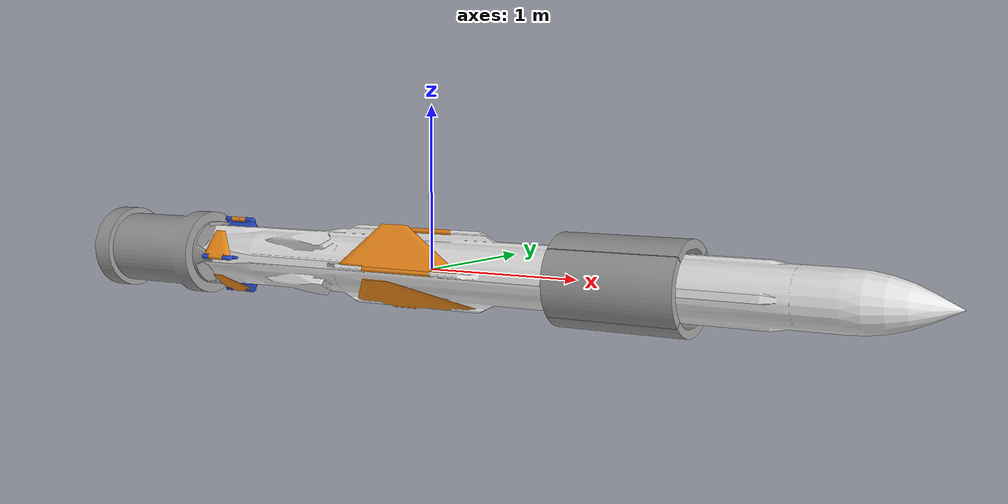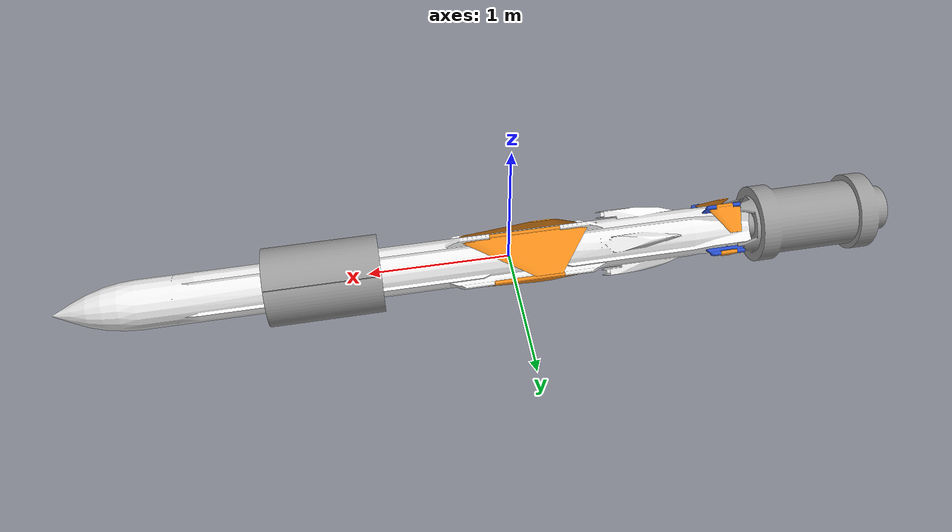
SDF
<sdf version='1.7'>
  <model name='ex_mm40b3'>
    <link name='base_link'>
      <inertial>
        <pose>0.558219 -0 -0 0 -0 0</pose>
        <mass>564.97</mass>
        <inertia>
          <ixx>13.5604</ixx>
          <ixy>0</ixy>
          <ixz>0</ixz>
          <iyy>1088.29</iyy>
          <iyz>0</iyz>
          <izz>1088.29</izz>
        </inertia>
      </inertial>
      <collision name='base_link_collision'>
        <pose>0 0 0 0 -0 0</pose>
        <geometry>
          <mesh>
            <scale>0.001 0.001 0.001</scale>
            <uri>model://ex_mm40b3_description/meshes/base_link.stl</uri>
          </mesh>
        </geometry>
        <surface>
          <contact>
            <ode/>
          </contact>
          <friction>
            <ode>
              <mu>0.2</mu>
              <mu2>0.2</mu2>
            </ode>
          </friction>
        </surface>
      </collision>
      <visual name='base_link_visual'>
        <pose>0 0 0 0 -0 0</pose>
        <geometry>
          <mesh>
            <scale>0.001 0.001 0.001</scale>
            <uri>model://ex_mm40b3_description/meshes/base_link.stl</uri>
          </mesh>
        </geometry>
        <material>
          <script>
            <name>Gazebo/White</name>
            <uri>file://media/materials/scripts/gazebo.material</uri>
          </script>
        </material>
      </visual>
      <self_collide>1</self_collide>
      <gravity>1</gravity>
    </link>
    <joint name='HolderJoint1' type='fixed'>
      <pose relative_to='base_link'>1.51469 0 0.187374 0 -0 0</pose>
      <parent>base_link</parent>
      <child>Holder_1</child>
      <axis>
        <dynamics>
          <spring_reference>0</spring_reference>
          <spring_stiffness>0</spring_stiffness>
        </dynamics>
        <xyz>0 0 1</xyz>
        <limit>
          <lower>-1e+16</lower>
          <upper>1e+16</upper>
        </limit>
      </axis>
      <physics>
        <ode>
          <limit>
            <cfm>0</cfm>
            <erp>0.2</erp>
          </limit>
        </ode>
      </physics>
    </joint>
    <link name='Holder_1'>
      <pose relative_to='HolderJoint1'>0 0 0 0 -0 0</pose>
      <inertial>
        <pose>-0.2 -0 0.036081 0 -0 0</pose>
        <mass>12.0855</mass>
        <inertia>
          <ixx>0.161772</ixx>
          <ixy>0</ixy>
          <ixz>0</ixz>
          <iyy>0.69521</iyy>
          <iyz>0</iyz>
          <izz>0.836017</izz>
        </inertia>
      </inertial>
      <collision name='Holder_1_collision'>
        <pose>-1.51469 0 -0.187374 0 -0 0</pose>
        <geometry>
          <mesh>
            <scale>0.001 0.001 0.001</scale>
            <uri>model://ex_mm40b3_description/meshes/Holder_1.stl</uri>
          </mesh>
        </geometry>
        <surface>
          <contact>
            <ode/>
          </contact>
          <friction>
            <ode>
              <mu>0.2</mu>
              <mu2>0.2</mu2>
            </ode>
          </friction>
        </surface>
      </collision>
      <visual name='Holder_1_visual'>
        <pose>-1.51469 0 -0.187374 0 -0 0</pose>
        <geometry>
          <mesh>
            <scale>0.001 0.001 0.001</scale>
            <uri>model://ex_mm40b3_description/meshes/Holder_1.stl</uri>
          </mesh>
        </geometry>
        <material>
          <script>
            <name>Gazebo/Grey</name>
            <uri>file://media/materials/scripts/gazebo.material</uri>
          </script>
        </material>
      </visual>
      <self_collide>1</self_collide>
    </link>
    <joint name='HolderJoint2' type='fixed'>
      <pose relative_to='base_link'>1.51469 -0.187374 0 0 -0 0</pose>
      <parent>base_link</parent>
      <child>Holder_2</child>
      <axis>
        <dynamics>
          <spring_reference>0</spring_reference>
          <spring_stiffness>0</spring_stiffness>
        </dynamics>
        <xyz>0 0 1</xyz>
        <limit>
          <lower>-1e+16</lower>
          <upper>1e+16</upper>
        </limit>
      </axis>
      <physics>
        <ode>
          <limit>
            <cfm>0</cfm>
            <erp>0.2</erp>
          </limit>
        </ode>
      </physics>
    </joint>
    <link name='Holder_2'>
      <pose relative_to='HolderJoint2'>0 0 0 0 -0 0</pose>
      <inertial>
        <pose>-0.2 -0.036081 -0 0 -0 0</pose>
        <mass>12.0855</mass>
        <inertia>
          <ixx>0.161772</ixx>
          <ixy>0</ixy>
          <ixz>0</ixz>
          <iyy>0.836017</iyy>
          <iyz>0</iyz>
          <izz>0.69521</izz>
        </inertia>
      </inertial>
      <collision name='Holder_2_collision'>
        <pose>-1.51469 0.187374 0 0 -0 0</pose>
        <geometry>
          <mesh>
            <scale>0.001 0.001 0.001</scale>
            <uri>model://ex_mm40b3_description/meshes/Holder_2.stl</uri>
          </mesh>
        </geometry>
        <surface>
          <contact>
            <ode/>
          </contact>
          <friction>
            <ode>
              <mu>0.2</mu>
              <mu2>0.2</mu2>
            </ode>
          </friction>
        </surface>
      </collision>
      <visual name='Holder_2_visual'>
        <pose>-1.51469 0.187374 0 0 -0 0</pose>
        <geometry>
          <mesh>
            <scale>0.001 0.001 0.001</scale>
            <uri>model://ex_mm40b3_description/meshes/Holder_2.stl</uri>
          </mesh>
        </geometry>
        <material>
          <script>
            <name>Gazebo/Grey</name>
            <uri>file://media/materials/scripts/gazebo.material</uri>
          </script>
        </material>
      </visual>
      <self_collide>1</self_collide>
    </link>
    <joint name='HolderJoint3' type='fixed'>
      <pose relative_to='base_link'>1.51469 0 -0.187374 0 -0 0</pose>
      <parent>base_link</parent>
      <child>Holder_3</child>
      <axis>
        <dynamics>
          <spring_reference>0</spring_reference>
          <spring_stiffness>0</spring_stiffness>
        </dynamics>
        <xyz>0 0 1</xyz>
        <limit>
          <lower>-1e+16</lower>
          <upper>1e+16</upper>
        </limit>
      </axis>
      <physics>
        <ode>
          <limit>
            <cfm>0</cfm>
            <erp>0.2</erp>
          </limit>
        </ode>
      </physics>
    </joint>
    <link name='Holder_3'>
      <pose relative_to='HolderJoint3'>0 0 0 0 -0 0</pose>
      <inertial>
        <pose>-0.2 0 -0.036081 0 -0 0</pose>
        <mass>12.0855</mass>
        <inertia>
          <ixx>0.161772</ixx>
          <ixy>0</ixy>
          <ixz>0</ixz>
          <iyy>0.69521</iyy>
          <iyz>0</iyz>
          <izz>0.836017</izz>
        </inertia>
      </inertial>
      <collision name='Holder_3_collision'>
        <pose>-1.51469 0 0.187374 0 -0 0</pose>
        <geometry>
          <mesh>
            <scale>0.001 0.001 0.001</scale>
            <uri>model://ex_mm40b3_description/meshes/Holder_3.stl</uri>
          </mesh>
        </geometry>
        <surface>
          <contact>
            <ode/>
          </contact>
          <friction>
            <ode>
              <mu>0.2</mu>
              <mu2>0.2</mu2>
            </ode>
          </friction>
        </surface>
      </collision>
      <visual name='Holder_3_visual'>
        <pose>-1.51469 0 0.187374 0 -0 0</pose>
        <geometry>
          <mesh>
            <scale>0.001 0.001 0.001</scale>
            <uri>model://ex_mm40b3_description/meshes/Holder_3.stl</uri>
          </mesh>
        </geometry>
        <material>
          <script>
            <name>Gazebo/Grey</name>
            <uri>file://media/materials/scripts/gazebo.material</uri>
          </script>
        </material>
      </visual>
      <self_collide>1</self_collide>
    </link>
    <joint name='HolderJoint4' type='fixed'>
      <pose relative_to='base_link'>1.51469 0.187374 0 0 -0 0</pose>
      <parent>base_link</parent>
      <child>Holder_4</child>
      <axis>
        <dynamics>
          <spring_reference>0</spring_reference>
          <spring_stiffness>0</spring_stiffness>
        </dynamics>
        <xyz>0 0 1</xyz>
        <limit>
          <lower>-1e+16</lower>
          <upper>1e+16</upper>
        </limit>
      </axis>
      <physics>
        <ode>
          <limit>
            <cfm>0</cfm>
            <erp>0.2</erp>
          </limit>
        </ode>
      </physics>
    </joint>
    <link name='Holder_4'>
      <pose relative_to='HolderJoint4'>0 0 0 0 -0 0</pose>
      <inertial>
        <pose>-0.2 0.036081 0 0 -0 0</pose>
        <mass>12.0855</mass>
        <inertia>
          <ixx>0.161772</ixx>
          <ixy>0</ixy>
          <ixz>0</ixz>
          <iyy>0.836017</iyy>
          <iyz>0</iyz>
          <izz>0.69521</izz>
        </inertia>
      </inertial>
      <collision name='Holder_4_collision'>
        <pose>-1.51469 -0.187374 0 0 -0 0</pose>
        <geometry>
          <mesh>
            <scale>0.001 0.001 0.001</scale>
            <uri>model://ex_mm40b3_description/meshes/Holder_4.stl</uri>
          </mesh>
        </geometry>
        <surface>
          <contact>
            <ode/>
          </contact>
          <friction>
            <ode>
              <mu>0.2</mu>
              <mu2>0.2</mu2>
            </ode>
          </friction>
        </surface>
      </collision>
      <visual name='Holder_4_visual'>
        <pose>-1.51469 -0.187374 0 0 -0 0</pose>
        <geometry>
          <mesh>
            <scale>0.001 0.001 0.001</scale>
            <uri>model://ex_mm40b3_description/meshes/Holder_4.stl</uri>
          </mesh>
        </geometry>
        <material>
          <script>
            <name>Gazebo/Grey</name>
            <uri>file://media/materials/scripts/gazebo.material</uri>
          </script>
        </material>
      </visual>
      <self_collide>1</self_collide>
    </link>
    <joint name='booster_fixing' type='fixed'>
      <pose relative_to='base_link'>-1.74178 0 0 0 -0 0</pose>
      <parent>base_link</parent>
      <child>Booster_1</child>
      <axis>
        <dynamics>
          <spring_reference>0</spring_reference>
          <spring_stiffness>0</spring_stiffness>
        </dynamics>
        <xyz>0 0 1</xyz>
        <limit>
          <lower>-1e+16</lower>
          <upper>1e+16</upper>
        </limit>
      </axis>
      <physics>
        <ode>
          <limit>
            <cfm>0</cfm>
            <erp>0.2</erp>
          </limit>
        </ode>
      </physics>
    </joint>
    <link name='Booster_1'>
      <pose relative_to='booster_fixing'>0 0 0 0 -0 0</pose>
      <inertial>
        <pose>-0.530988 0 0 0 -0 0</pose>
        <mass>138.763</mass>
        <inertia>
          <ixx>6.06454</ixx>
          <ixy>0</ixy>
          <ixz>0</ixz>
          <iyy>17.4505</iyy>
          <iyz>0</iyz>
          <izz>17.4505</izz>
        </inertia>
      </inertial>
      <collision name='Booster_1_collision'>
        <pose>1.74178 0 0 0 -0 0</pose>
        <geometry>
          <mesh>
            <scale>0.001 0.001 0.001</scale>
            <uri>model://ex_mm40b3_description/meshes/Booster_1.stl</uri>
          </mesh>
        </geometry>
        <surface>
          <contact>
            <ode/>
          </contact>
          <friction>
            <ode>
              <mu>0.2</mu>
              <mu2>0.2</mu2>
            </ode>
          </friction>
        </surface>
      </collision>
      <visual name='Booster_1_visual'>
        <pose>1.74178 0 0 0 -0 0</pose>
        <geometry>
          <mesh>
            <scale>0.001 0.001 0.001</scale>
            <uri>model://ex_mm40b3_description/meshes/Booster_1.stl</uri>
          </mesh>
        </geometry>
        <plugin name='SimpleThrustVisual' filename='libForceVisual.so'>
          <topic_name>booster_visual</topic_name>
          <color>Gazebo/Red</color>
        </plugin>
        <material>
          <script>
            <name>Gazebo/Gray</name>
            <uri>file://media/materials/scripts/gazebo.material</uri>
          </script>
        </material>
      </visual>
      <self_collide>1</self_collide>
    </link>
    <joint name='fins_rev1' type='revolute'>
      <pose relative_to='base_link'>-1.56176 0 0.18 0 -0 0</pose>
      <parent>base_link</parent>
      <child>FinHolder_1</child>
      <axis>
        <xyz>0 0 1</xyz>
        <limit>
          <lower>-0.349066</lower>
          <upper>0.349066</upper>
          <effort>100</effort>
          <velocity>100</velocity>
        </limit>
        <dynamics>
          <spring_reference>0</spring_reference>
          <spring_stiffness>0</spring_stiffness>
        </dynamics>
      </axis>
    </joint>
    <link name='FinHolder_1'>
      <pose relative_to='fins_rev1'>0 0 0 0 -0 0</pose>
      <inertial>
        <pose>0.01199 3e-06 0.035204 0 -0 0</pose>
        <mass>0.613642</mass>
        <inertia>
          <ixx>0.000219</ixx>
          <ixy>0</ixy>
          <ixz>3.8e-05</ixz>
          <iyy>0.004162</iyy>
          <iyz>0</iyz>
          <izz>0.003989</izz>
        </inertia>
      </inertial>
      <collision name='FinHolder_1_collision'>
        <pose>1.56176 0 -0.18 0 -0 0</pose>
        <geometry>
          <mesh>
            <scale>0.001 0.001 0.001</scale>
            <uri>model://ex_mm40b3_description/meshes/FinHolder_1.stl</uri>
          </mesh>
        </geometry>
        <surface>
          <contact>
            <ode/>
          </contact>
          <friction>
            <ode>
              <mu>0.2</mu>
              <mu2>0.2</mu2>
            </ode>
          </friction>
        </surface>
      </collision>
      <visual name='FinHolder_1_visual'>
        <pose>1.56176 0 -0.18 0 -0 0</pose>
        <geometry>
          <mesh>
            <scale>0.001 0.001 0.001</scale>
            <uri>model://ex_mm40b3_description/meshes/FinHolder_1.stl</uri>
          </mesh>
        </geometry>
        <material>
          <script>
            <name>Gazebo/Blue</name>
            <uri>file://media/materials/scripts/gazebo.material</uri>
          </script>
        </material>
      </visual>
      <self_collide>1</self_collide>
    </link>
    <joint name='fin_fold1' type='revolute'>
      <pose relative_to='FinHolder_1'>0 0 0.055 0 -0 0</pose>
      <parent>FinHolder_1</parent>
      <child>Fin_1</child>
      <axis>
        <xyz>1 0 0</xyz>
        <limit>
          <lower>0</lower>
          <upper>2.14676</upper>
          <effort>100</effort>
          <velocity>100</velocity>
        </limit>
        <dynamics>
          <spring_reference>0</spring_reference>
          <spring_stiffness>0</spring_stiffness>
        </dynamics>
      </axis>
    </joint>
    <link name='Fin_1'>
      <pose relative_to='fin_fold1'>0 0 0 0 -0 0</pose>
      <inertial>
        <pose>-0.01567 0.051059 -0.033158 0 -0 0</pose>
        <mass>1.19146</mass>
        <inertia>
          <ixx>0.003045</ixx>
          <ixy>0.000707</ixy>
          <ixz>-0.000459</ixz>
          <iyy>0.003419</iyy>
          <iyz>0.00136</iyz>
          <izz>0.004631</izz>
        </inertia>
      </inertial>
      <collision name='Fin_1_collision'>
        <pose>1.56176 0 -0.235 0 -0 0</pose>
        <geometry>
          <mesh>
            <scale>0.001 0.001 0.001</scale>
            <uri>model://ex_mm40b3_description/meshes/Fin_1.stl</uri>
          </mesh>
        </geometry>
        <surface>
          <contact>
            <ode/>
          </contact>
          <friction>
            <ode>
              <mu>0.2</mu>
              <mu2>0.2</mu2>
            </ode>
          </friction>
        </surface>
      </collision>
      <visual name='Fin_1_visual'>
        <pose>1.56176 0 -0.235 0 -0 0</pose>
        <geometry>
          <mesh>
            <scale>0.001 0.001 0.001</scale>
            <uri>model://ex_mm40b3_description/meshes/Fin_1.stl</uri>
          </mesh>
        </geometry>
        <material>
          <script>
            <name>Gazebo/Orange</name>
            <uri>file://media/materials/scripts/gazebo.material</uri>
          </script>
        </material>
      </visual>
      <self_collide>1</self_collide>
    </link>
    <joint name='fins_rev2' type='revolute'>
      <pose relative_to='base_link'>-1.56176 0.18 0 0 -0 0</pose>
      <parent>base_link</parent>
      <child>FinHolder_2</child>
      <axis>
        <xyz>0 1 0</xyz>
        <limit>
          <lower>-0.349066</lower>
          <upper>0.349066</upper>
          <effort>100</effort>
          <velocity>100</velocity>
        </limit>
        <dynamics>
          <spring_reference>0</spring_reference>
          <spring_stiffness>0</spring_stiffness>
        </dynamics>
      </axis>
    </joint>
    <link name='FinHolder_2'>
      <pose relative_to='fins_rev2'>0 0 0 0 -0 0</pose>
      <inertial>
        <pose>0.01199 0.035204 -3e-06 0 -0 0</pose>
        <mass>0.613642</mass>
        <inertia>
          <ixx>0.000219</ixx>
          <ixy>3.8e-05</ixy>
          <ixz>0</ixz>
          <iyy>0.003989</iyy>
          <iyz>0</iyz>
          <izz>0.004162</izz>
        </inertia>
      </inertial>
      <collision name='FinHolder_2_collision'>
        <pose>1.56176 -0.18 0 0 -0 0</pose>
        <geometry>
          <mesh>
            <scale>0.001 0.001 0.001</scale>
            <uri>model://ex_mm40b3_description/meshes/FinHolder_2.stl</uri>
          </mesh>
        </geometry>
        <surface>
          <contact>
            <ode/>
          </contact>
          <friction>
            <ode>
              <mu>0.2</mu>
              <mu2>0.2</mu2>
            </ode>
          </friction>
        </surface>
      </collision>
      <visual name='FinHolder_2_visual'>
        <pose>1.56176 -0.18 0 0 -0 0</pose>
        <geometry>
          <mesh>
            <scale>0.001 0.001 0.001</scale>
            <uri>model://ex_mm40b3_description/meshes/FinHolder_2.stl</uri>
          </mesh>
        </geometry>
        <material>
          <script>
            <name>Gazebo/Blue</name>
            <uri>file://media/materials/scripts/gazebo.material</uri>
          </script>
        </material>
      </visual>
      <self_collide>1</self_collide>
    </link>
    <joint name='fin_fold2' type='revolute'>
      <pose relative_to='FinHolder_2'>0 0.055 -1.7e-05 0 -0 0</pose>
      <parent>FinHolder_2</parent>
      <child>Fin_2</child>
      <axis>
        <xyz>1 0 0</xyz>
        <limit>
          <lower>0</lower>
          <upper>2.14676</upper>
          <effort>100</effort>
          <velocity>100</velocity>
        </limit>
        <dynamics>
          <spring_reference>0</spring_reference>
          <spring_stiffness>0</spring_stiffness>
        </dynamics>
      </axis>
    </joint>
    <link name='Fin_2'>
      <pose relative_to='fin_fold2'>0 0 0 0 -0 0</pose>
      <inertial>
        <pose>-0.01567 -0.033158 -0.051059 0 -0 0</pose>
        <mass>1.19146</mass>
        <inertia>
          <ixx>0.003045</ixx>
          <ixy>-0.000459</ixy>
          <ixz>-0.000707</ixz>
          <iyy>0.004631</iyy>
          <iyz>-0.00136</iyz>
          <izz>0.003419</izz>
        </inertia>
      </inertial>
      <collision name='Fin_2_collision'>
        <pose>1.56176 -0.235 1.7e-05 0 -0 0</pose>
        <geometry>
          <mesh>
            <scale>0.001 0.001 0.001</scale>
            <uri>model://ex_mm40b3_description/meshes/Fin_2.stl</uri>
          </mesh>
        </geometry>
        <surface>
          <contact>
            <ode/>
          </contact>
          <friction>
            <ode>
              <mu>0.2</mu>
              <mu2>0.2</mu2>
            </ode>
          </friction>
        </surface>
      </collision>
      <visual name='Fin_2_visual'>
        <pose>1.56176 -0.235 1.7e-05 0 -0 0</pose>
        <geometry>
          <mesh>
            <scale>0.001 0.001 0.001</scale>
            <uri>model://ex_mm40b3_description/meshes/Fin_2.stl</uri>
          </mesh>
        </geometry>
        <material>
          <script>
            <name>Gazebo/Orange</name>
            <uri>file://media/materials/scripts/gazebo.material</uri>
          </script>
        </material>
      </visual>
      <self_collide>1</self_collide>
    </link>
    <joint name='fins_rev3' type='revolute'>
      <pose relative_to='base_link'>-1.56176 0 -0.18 0 -0 0</pose>
      <parent>base_link</parent>
      <child>FinHolder_3</child>
      <axis>
        <xyz>0 0 -1</xyz>
        <limit>
          <lower>-0.349066</lower>
          <upper>0.349066</upper>
          <effort>100</effort>
          <velocity>100</velocity>
        </limit>
        <dynamics>
          <spring_reference>0</spring_reference>
          <spring_stiffness>0</spring_stiffness>
        </dynamics>
      </axis>
    </joint>
    <link name='FinHolder_3'>
      <pose relative_to='fins_rev3'>0 0 0 0 -0 0</pose>
      <inertial>
        <pose>0.01199 -3e-06 -0.035204 0 -0 0</pose>
        <mass>0.613642</mass>
        <inertia>
          <ixx>0.000219</ixx>
          <ixy>0</ixy>
          <ixz>-3.8e-05</ixz>
          <iyy>0.004162</iyy>
          <iyz>0</iyz>
          <izz>0.003989</izz>
        </inertia>
      </inertial>
      <collision name='FinHolder_3_collision'>
        <pose>1.56176 0 0.18 0 -0 0</pose>
        <geometry>
          <mesh>
            <scale>0.001 0.001 0.001</scale>
            <uri>model://ex_mm40b3_description/meshes/FinHolder_3.stl</uri>
          </mesh>
        </geometry>
        <surface>
          <contact>
            <ode/>
          </contact>
          <friction>
            <ode>
              <mu>0.2</mu>
              <mu2>0.2</mu2>
            </ode>
          </friction>
        </surface>
      </collision>
      <visual name='FinHolder_3_visual'>
        <pose>1.56176 0 0.18 0 -0 0</pose>
        <geometry>
          <mesh>
            <scale>0.001 0.001 0.001</scale>
            <uri>model://ex_mm40b3_description/meshes/FinHolder_3.stl</uri>
          </mesh>
        </geometry>
        <material>
          <script>
            <name>Gazebo/Blue</name>
            <uri>file://media/materials/scripts/gazebo.material</uri>
          </script>
        </material>
      </visual>
      <self_collide>1</self_collide>
    </link>
    <joint name='fin_fold3' type='revolute'>
      <pose relative_to='FinHolder_3'>0 0 -0.055 0 -0 0</pose>
      <parent>FinHolder_3</parent>
      <child>Fin_3</child>
      <axis>
        <xyz>1 0 0</xyz>
        <limit>
          <lower>0</lower>
          <upper>2.14676</upper>
          <effort>100</effort>
          <velocity>100</velocity>
        </limit>
        <dynamics>
          <spring_reference>0</spring_reference>
          <spring_stiffness>0</spring_stiffness>
        </dynamics>
      </axis>
    </joint>
    <link name='Fin_3'>
      <pose relative_to='fin_fold3'>0 0 0 0 -0 0</pose>
      <inertial>
        <pose>-0.01567 -0.051059 0.033158 0 -0 0</pose>
        <mass>1.19146</mass>
        <inertia>
          <ixx>0.003045</ixx>
          <ixy>-0.000707</ixy>
          <ixz>0.000459</ixz>
          <iyy>0.003419</iyy>
          <iyz>0.00136</iyz>
          <izz>0.004631</izz>
        </inertia>
      </inertial>
      <collision name='Fin_3_collision'>
        <pose>1.56176 0 0.235 0 -0 0</pose>
        <geometry>
          <mesh>
            <scale>0.001 0.001 0.001</scale>
            <uri>model://ex_mm40b3_description/meshes/Fin_3.stl</uri>
          </mesh>
        </geometry>
        <surface>
          <contact>
            <ode/>
          </contact>
          <friction>
            <ode>
              <mu>0.2</mu>
              <mu2>0.2</mu2>
            </ode>
          </friction>
        </surface>
      </collision>
      <visual name='Fin_3_visual'>
        <pose>1.56176 0 0.235 0 -0 0</pose>
        <geometry>
          <mesh>
            <scale>0.001 0.001 0.001</scale>
            <uri>model://ex_mm40b3_description/meshes/Fin_3.stl</uri>
          </mesh>
        </geometry>
        <material>
          <script>
            <name>Gazebo/Orange</name>
            <uri>file://media/materials/scripts/gazebo.material</uri>
          </script>
        </material>
      </visual>
      <self_collide>1</self_collide>
    </link>
    <joint name='fins_rev4' type='revolute'>
      <pose relative_to='base_link'>-1.56176 -0.18 0 0 -0 0</pose>
      <parent>base_link</parent>
      <child>FinHolder_4</child>
      <axis>
        <xyz>0 -1 0</xyz>
        <limit>
          <lower>-0.349066</lower>
          <upper>0.349066</upper>
          <effort>100</effort>
          <velocity>100</velocity>
        </limit>
        <dynamics>
          <spring_reference>0</spring_reference>
          <spring_stiffness>0</spring_stiffness>
        </dynamics>
      </axis>
    </joint>
    <link name='FinHolder_4'>
      <pose relative_to='fins_rev4'>0 0 0 0 -0 0</pose>
      <inertial>
        <pose>0.01199 -0.035204 3e-06 0 -0 0</pose>
        <mass>0.613642</mass>
        <inertia>
          <ixx>0.000219</ixx>
          <ixy>-3.8e-05</ixy>
          <ixz>0</ixz>
          <iyy>0.003989</iyy>
          <iyz>0</iyz>
          <izz>0.004162</izz>
        </inertia>
      </inertial>
      <collision name='FinHolder_4_collision'>
        <pose>1.56176 0.18 0 0 -0 0</pose>
        <geometry>
          <mesh>
            <scale>0.001 0.001 0.001</scale>
            <uri>model://ex_mm40b3_description/meshes/FinHolder_4.stl</uri>
          </mesh>
        </geometry>
        <surface>
          <contact>
            <ode/>
          </contact>
          <friction>
            <ode>
              <mu>0.2</mu>
              <mu2>0.2</mu2>
            </ode>
          </friction>
        </surface>
      </collision>
      <visual name='FinHolder_4_visual'>
        <pose>1.56176 0.18 0 0 -0 0</pose>
        <geometry>
          <mesh>
            <scale>0.001 0.001 0.001</scale>
            <uri>model://ex_mm40b3_description/meshes/FinHolder_4.stl</uri>
          </mesh>
        </geometry>
        <material>
          <script>
            <name>Gazebo/Blue</name>
            <uri>file://media/materials/scripts/gazebo.material</uri>
          </script>
        </material>
      </visual>
      <self_collide>1</self_collide>
    </link>
    <joint name='fin_fold4' type='revolute'>
      <pose relative_to='FinHolder_4'>0 -0.055 0 0 -0 0</pose>
      <parent>FinHolder_4</parent>
      <child>Fin_4</child>
      <axis>
        <xyz>1 0 0</xyz>
        <limit>
          <lower>0</lower>
          <upper>2.14676</upper>
          <effort>100</effort>
          <velocity>100</velocity>
        </limit>
        <dynamics>
          <spring_reference>0</spring_reference>
          <spring_stiffness>0</spring_stiffness>
        </dynamics>
      </axis>
    </joint>
    <link name='Fin_4'>
      <pose relative_to='fin_fold4'>0 0 0 0 -0 0</pose>
      <inertial>
        <pose>-0.01567 0.033158 0.051059 0 -0 0</pose>
        <mass>1.19146</mass>
        <inertia>
          <ixx>0.003045</ixx>
          <ixy>0.000459</ixy>
          <ixz>0.000707</ixz>
          <iyy>0.004631</iyy>
          <iyz>-0.00136</iyz>
          <izz>0.003419</izz>
        </inertia>
      </inertial>
      <collision name='Fin_4_collision'>
        <pose>1.56176 0.235 0 0 -0 0</pose>
        <geometry>
          <mesh>
            <scale>0.001 0.001 0.001</scale>
            <uri>model://ex_mm40b3_description/meshes/Fin_4.stl</uri>
          </mesh>
        </geometry>
        <surface>
          <contact>
            <ode/>
          </contact>
          <friction>
            <ode>
              <mu>0.2</mu>
              <mu2>0.2</mu2>
            </ode>
          </friction>
        </surface>
      </collision>
      <visual name='Fin_4_visual'>
        <pose>1.56176 0.235 0 0 -0 0</pose>
        <geometry>
          <mesh>
            <scale>0.001 0.001 0.001</scale>
            <uri>model://ex_mm40b3_description/meshes/Fin_4.stl</uri>
          </mesh>
        </geometry>
        <material>
          <script>
            <name>Gazebo/Orange</name>
            <uri>file://media/materials/scripts/gazebo.material</uri>
          </script>
        </material>
      </visual>
      <self_collide>1</self_collide>
    </link>
    <joint name='wings_fold1' type='revolute'>
      <pose relative_to='base_link'>-0.108536 0 0.231018 0 -0 0</pose>
      <parent>base_link</parent>
      <child>Wing1_1</child>
      <axis>
        <xyz>1 0 0</xyz>
        <limit>
          <lower>0</lower>
          <upper>2.14676</upper>
          <effort>100</effort>
          <velocity>100</velocity>
        </limit>
        <dynamics>
          <spring_reference>0</spring_reference>
          <spring_stiffness>0</spring_stiffness>
        </dynamics>
      </axis>
    </joint>
    <link name='Wing1_1'>
      <pose relative_to='wings_fold1'>0 0 0 0 -0 0</pose>
      <inertial>
        <pose>-0.040666 0.080745 -0.052436 0 -0 0</pose>
        <mass>7.94153</mass>
        <inertia>
          <ixx>0.045859</ixx>
          <ixy>0.016465</ixy>
          <ixz>-0.010693</ixz>
          <iyy>0.280396</iyy>
          <iyz>0.020713</iyz>
          <izz>0.29884</izz>
        </inertia>
      </inertial>
      <collision name='Wing1_1_collision'>
        <pose>0.108536 0 -0.231018 0 -0 0</pose>
        <geometry>
          <mesh>
            <scale>0.001 0.001 0.001</scale>
            <uri>model://ex_mm40b3_description/meshes/Wing1_1.stl</uri>
          </mesh>
        </geometry>
        <surface>
          <contact>
            <ode/>
          </contact>
          <friction>
            <ode>
              <mu>0.2</mu>
              <mu2>0.2</mu2>
            </ode>
          </friction>
        </surface>
      </collision>
      <visual name='Wing1_1_visual'>
        <pose>0.108536 0 -0.231018 0 -0 0</pose>
        <geometry>
          <mesh>
            <scale>0.001 0.001 0.001</scale>
            <uri>model://ex_mm40b3_description/meshes/Wing1_1.stl</uri>
          </mesh>
        </geometry>
        <material>
          <script>
            <name>Gazebo/Orange</name>
            <uri>file://media/materials/scripts/gazebo.material</uri>
          </script>
        </material>
      </visual>
      <self_collide>1</self_collide>
    </link>
    <joint name='wings_fold2' type='revolute'>
      <pose relative_to='base_link'>-0.108536 0.231018 0 0 -0 0</pose>
      <parent>base_link</parent>
      <child>Wing1_2</child>
      <axis>
        <xyz>1 0 0</xyz>
        <limit>
          <lower>0</lower>
          <upper>2.14676</upper>
          <effort>100</effort>
          <velocity>100</velocity>
        </limit>
        <dynamics>
          <spring_reference>0</spring_reference>
          <spring_stiffness>0</spring_stiffness>
        </dynamics>
      </axis>
    </joint>
    <link name='Wing1_2'>
      <pose relative_to='wings_fold2'>0 0 0 0 -0 0</pose>
      <inertial>
        <pose>-0.040666 -0.051891 -0.079906 0 -0 0</pose>
        <mass>7.94153</mass>
        <inertia>
          <ixx>0.045859</ixx>
          <ixy>-0.010693</ixy>
          <ixz>-0.016465</ixz>
          <iyy>0.29884</iyy>
          <iyz>-0.020713</iyz>
          <izz>0.280396</izz>
        </inertia>
      </inertial>
      <collision name='Wing1_2_collision'>
        <pose>0.108536 -0.231018 0 0 -0 0</pose>
        <geometry>
          <mesh>
            <scale>0.001 0.001 0.001</scale>
            <uri>model://ex_mm40b3_description/meshes/Wing1_2.stl</uri>
          </mesh>
        </geometry>
        <surface>
          <contact>
            <ode/>
          </contact>
          <friction>
            <ode>
              <mu>0.2</mu>
              <mu2>0.2</mu2>
            </ode>
          </friction>
        </surface>
      </collision>
      <visual name='Wing1_2_visual'>
        <pose>0.108536 -0.231018 0 0 -0 0</pose>
        <geometry>
          <mesh>
            <scale>0.001 0.001 0.001</scale>
            <uri>model://ex_mm40b3_description/meshes/Wing1_2.stl</uri>
          </mesh>
        </geometry>
        <material>
          <script>
            <name>Gazebo/Orange</name>
            <uri>file://media/materials/scripts/gazebo.material</uri>
          </script>
        </material>
      </visual>
      <self_collide>1</self_collide>
    </link>
    <joint name='wings_fold3' type='revolute'>
      <pose relative_to='base_link'>-0.108536 0 -0.231018 0 -0 0</pose>
      <parent>base_link</parent>
      <child>Wing1_3</child>
      <axis>
        <xyz>1 0 0</xyz>
        <limit>
          <lower>0</lower>
          <upper>2.14676</upper>
          <effort>100</effort>
          <velocity>100</velocity>
        </limit>
        <dynamics>
          <spring_reference>0</spring_reference>
          <spring_stiffness>0</spring_stiffness>
        </dynamics>
      </axis>
    </joint>
    <link name='Wing1_3'>
      <pose relative_to='wings_fold3'>0 0 0 0 -0 0</pose>
      <inertial>
        <pose>-0.040666 -0.079906 0.051891 0 -0 0</pose>
        <mass>7.94153</mass>
        <inertia>
          <ixx>0.045859</ixx>
          <ixy>-0.016465</ixy>
          <ixz>0.010693</ixz>
          <iyy>0.280396</iyy>
          <iyz>0.020713</iyz>
          <izz>0.29884</izz>
        </inertia>
      </inertial>
      <collision name='Wing1_3_collision'>
        <pose>0.108536 0 0.231018 0 -0 0</pose>
        <geometry>
          <mesh>
            <scale>0.001 0.001 0.001</scale>
            <uri>model://ex_mm40b3_description/meshes/Wing1_3.stl</uri>
          </mesh>
        </geometry>
        <surface>
          <contact>
            <ode/>
          </contact>
          <friction>
            <ode>
              <mu>0.2</mu>
              <mu2>0.2</mu2>
            </ode>
          </friction>
        </surface>
      </collision>
      <visual name='Wing1_3_visual'>
        <pose>0.108536 0 0.231018 0 -0 0</pose>
        <geometry>
          <mesh>
            <scale>0.001 0.001 0.001</scale>
            <uri>model://ex_mm40b3_description/meshes/Wing1_3.stl</uri>
          </mesh>
        </geometry>
        <material>
          <script>
            <name>Gazebo/Orange</name>
            <uri>file://media/materials/scripts/gazebo.material</uri>
          </script>
        </material>
      </visual>
      <self_collide>1</self_collide>
    </link>
    <joint name='wings_fold4' type='revolute'>
      <pose relative_to='base_link'>-0.108536 -0.231018 0 0 -0 0</pose>
      <parent>base_link</parent>
      <child>Wing1_4</child>
      <axis>
        <xyz>1 0 0</xyz>
        <limit>
          <lower>0</lower>
          <upper>2.14676</upper>
          <effort>100</effort>
          <velocity>100</velocity>
        </limit>
        <dynamics>
          <spring_reference>0</spring_reference>
          <spring_stiffness>0</spring_stiffness>
        </dynamics>
      </axis>
    </joint>
    <link name='Wing1_4'>
      <pose relative_to='wings_fold4'>0 0 0 0 -0 0</pose>
      <inertial>
        <pose>-0.040666 0.051891 0.079906 0 -0 0</pose>
        <mass>7.94153</mass>
        <inertia>
          <ixx>0.045859</ixx>
          <ixy>0.010693</ixy>
          <ixz>0.016465</ixz>
          <iyy>0.29884</iyy>
          <iyz>-0.020713</iyz>
          <izz>0.280396</izz>
        </inertia>
      </inertial>
      <collision name='Wing1_4_collision'>
        <pose>0.108536 0.231018 0 0 -0 0</pose>
        <geometry>
          <mesh>
            <scale>0.001 0.001 0.001</scale>
            <uri>model://ex_mm40b3_description/meshes/Wing1_4.stl</uri>
          </mesh>
        </geometry>
        <surface>
          <contact>
            <ode/>
          </contact>
          <friction>
            <ode>
              <mu>0.2</mu>
              <mu2>0.2</mu2>
            </ode>
          </friction>
        </surface>
      </collision>
      <visual name='Wing1_4_visual'>
        <pose>0.108536 0.231018 0 0 -0 0</pose>
        <geometry>
          <mesh>
            <scale>0.001 0.001 0.001</scale>
            <uri>model://ex_mm40b3_description/meshes/Wing1_4.stl</uri>
          </mesh>
        </geometry>
        <material>
          <script>
            <name>Gazebo/Orange</name>
            <uri>file://media/materials/scripts/gazebo.material</uri>
          </script>
        </material>
      </visual>
      <self_collide>1</self_collide>
    </link>
    <static>0</static>
    <plugin name='ex_mm40b3_controller' filename='libgazebo_ros_control.so'>
      <robotNamespace>ex_mm40b3_controller</robotNamespace>
      <robotSimType>gazebo_ros_control/DefaultRobotHWSim</robotSimType>
    </plugin>
    <plugin name='BoosterThrust' filename='libSimpleThruster.so'>
      <link_name>Booster_1</link_name>
      <forward_dir>1 0 0</forward_dir>
      <thrust_origin>0 0 0</thrust_origin>
      <robotNamespace/>
      <topic_name>booster_visual</topic_name>
      <thrust_topic>booster_force</thrust_topic>
    </plugin>
  </model>
</sdf>
